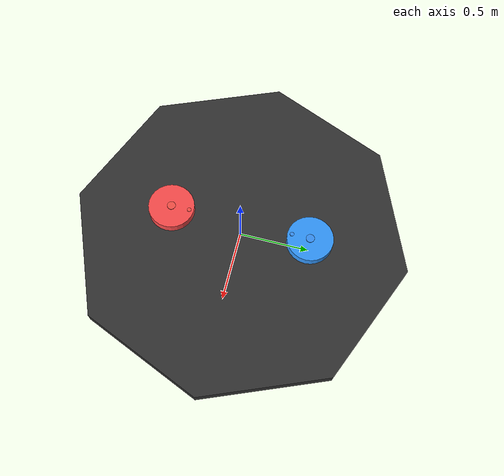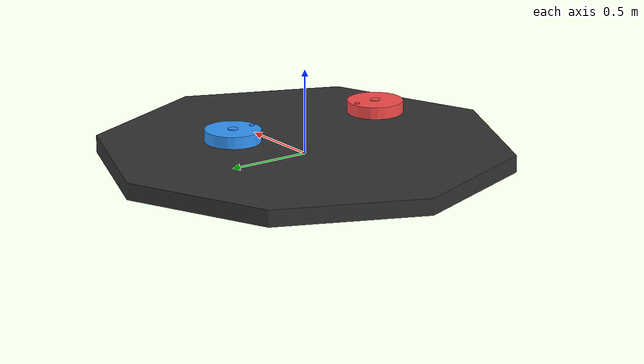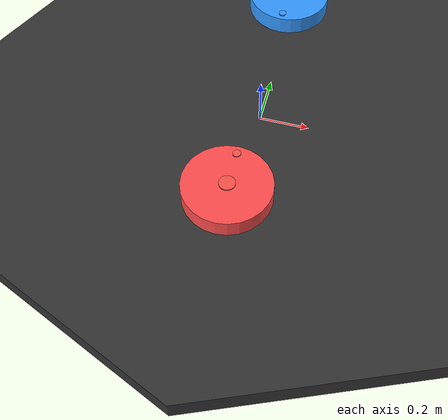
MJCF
<mujoco model="roomba_uwb">
    <option iterations="8" ls_iterations="16" solver="Newton" timestep="0.002"/>
    <include file="common/assets_defaults.xml"/>
    <worldbody>
        <geom name="floor" type="mesh" mesh="oct_floor" pos="0 0 0" quat="0.7071 0.7071 0 0" material="floor_color"/>
        <light name="light" pos="0 0 7" dir="0 0 -1" mode="fixed"/>
        <camera name="side" pos="-4 0 2" xyaxes="0 -1 0 1 0 2" mode="fixed"/>
        <body name="roomba1" pos="0 0.5 0.2">
            <freejoint name="root1"/>
            <geom name="roomba1" type="cylinder" size="0.1625 0.035" pos="0 0 0" material="roomba1_color"/>
            <body name="lwheel1" pos="0.115 0.005 -0.005">
                <joint name="lwheel1" type="hinge" axis="1 0 0"/>
                <geom type="cylinder" size="0.04 0.015" quat="0 0.7071 0 0.7071"/>
            </body>
            <body name="rwheel1" pos="-0.115 0.005 -0.005">
                <joint name="rwheel1" type="hinge" axis="1 0 0"/>
                <geom type="cylinder" size="0.04 0.015" quat="0 0.7071 0 0.7071"/>
            </body>
            <body name="fwheel1" pos="0 -0.13 -0.025">
                <geom type="sphere" size="0.02" friction="0 0 0"/>
            </body>
            <body name="fsensor1" pos="0 -0.13 0.02">
                <geom type="cylinder" size="0.015 0.02" material="roomba1_decal_color" contype="0" conaffinity="0"/>
            </body>
            <body name="onbutton1" pos="0 0 0.02">
                <geom type="cylinder" size="0.03 0.02" material="roomba1_decal_color" contype="0" conaffinity="0"/>
            </body>
        </body>
        <body name="roomba2" pos="0 -0.5 0.2" quat="0 0 0 1">
            <freejoint name="root2"/>
            <geom name="roomba2" type="cylinder" size="0.1625 0.035" pos="0 0 0" material="roomba2_color"/>
            <body name="lwheel2" pos="0.115 0.005 -0.005">
                <joint name="lwheel2" type="hinge" axis="1 0 0"/>
                <geom type="cylinder" size="0.04 0.015" quat="0 0.7071 0 0.7071"/>
            </body>
            <body name="rwheel2" pos="-0.115 0.005 -0.005">
                <joint name="rwheel2" type="hinge" axis="1 0 0"/>
                <geom type="cylinder" size="0.04 0.015" quat="0 0.7071 0 0.7071"/>
            </body>
            <body name="fwheel2" pos="0 -0.13 -0.025">
                <geom type="sphere" size="0.02" friction="0 0 0"/>
            </body>
            <body name="fsensor2" pos="0 -0.13 0.02">
                <geom type="cylinder" size="0.015 0.02" material="roomba2_decal_color" contype="0" conaffinity="0"/>
            </body>
            <body name="onbutton2" pos="0 0 0.02">
                <geom type="cylinder" size="0.03 0.02" material="roomba2_decal_color" contype="0" conaffinity="0"/>
            </body>
        </body>
    </worldbody>

    <actuator>
        <motor name="lwheel1" joint="lwheel1" gear="2"/>
        <motor name="rwheel1" joint="rwheel1" gear="2"/>
        <motor name="lwheel2" joint="lwheel2" gear="2"/>
        <motor name="rwheel2" joint="rwheel2" gear="2"/>
    </actuator>
</mujoco>

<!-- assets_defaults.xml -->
<mujoco model="assets_defaults">
    <default>
        <motor ctrllimited="true" ctrlrange="-1 1"/>
        <geom density="700"/>
        <joint damping="0.1" armature="0.1"/>
    </default>

    <asset>
        <texture name="skybox" type="skybox" builtin="gradient"
                rgb1=".4 .6 .8" rgb2="0 0 0"
                width="800" height="800" mark="random" markrgb="1 1 1"/>

        <material name="sky" texture="skybox" emission="1"/>

        <material name="roomba1_color"         rgba="0.2 0.6 1 1"/>   <!-- Blue -->
        <material name="roomba1_decal_color"   rgba="0.22 0.58 0.98 1"/>
        <material name="roomba2_color"         rgba="1 0.3 0.3 1"/>   <!-- Red -->
        <material name="roomba2_decal_color"   rgba="0.98 0.32 0.28 1"/>

        <material name="floor_color" rgba="0.2 0.2 0.2 1"/>
        <mesh name="oct_floor" file="octagon.stl" scale="1 1 1"/>
    </asset>
</mujoco>
